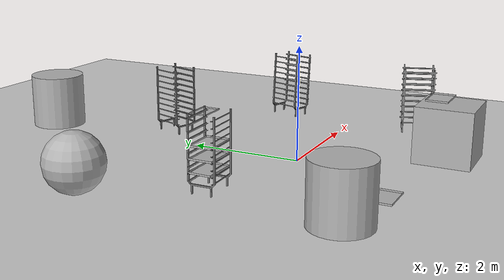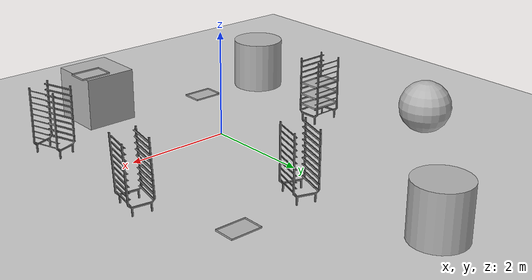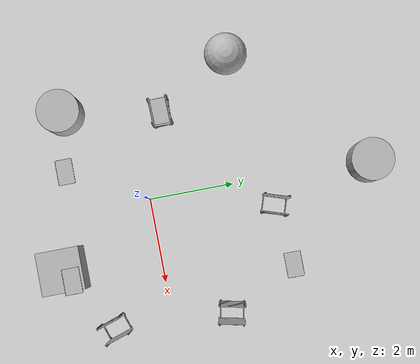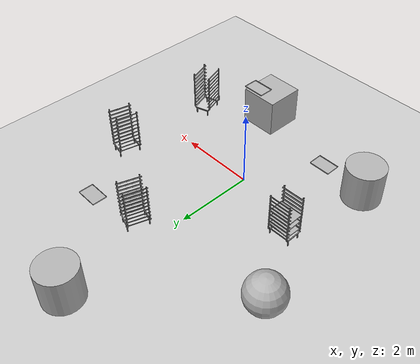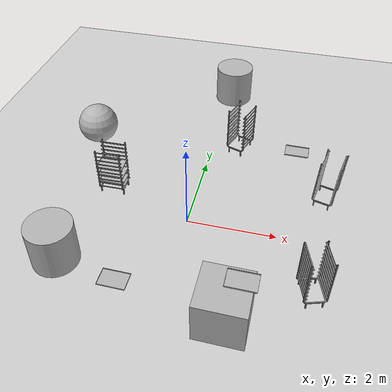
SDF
<?xml version="1.0" ?>

<sdf version='1.9'>
  <world name='learning'>
    <physics name='1ms' type='ignored'>
      <max_step_size>0.0050000000000000001</max_step_size>
      <real_time_factor>1</real_time_factor>
      <real_time_update_rate>1000</real_time_update_rate>
    </physics>
    <plugin name='gz::sim::systems::Physics' filename='ignition-gazebo-physics-system'/>
    <plugin name='gz::sim::systems::UserCommands' filename='ignition-gazebo-user-commands-system'/>
    <plugin name='gz::sim::systems::SceneBroadcaster' filename='ignition-gazebo-scene-broadcaster-system'/>
    <plugin name='gz::sim::systems::Contact' filename='ignition-gazebo-contact-system'/>
    <plugin name='gz::sim::systems::Sensors' filename='gz-sim-sensors-system'>
      <render_engine>ogre2</render_engine>
    </plugin>
    <gravity>0 0 -9.81</gravity>
    <magnetic_field>6e-06 2.3e-05 -4.2e-05</magnetic_field>
    <atmosphere type='adiabatic'/>
    <scene>
      <ambient>0.4 0.4 0.4 1</ambient>
      <background>0.7 0.7 0.7 1</background>
      <shadows>true</shadows>
    </scene>
    <model name='ground_plane'>
      <plugin name='gz::sim::systems::JointStatePublisher' filename='gz-sim-joint-state-publisher-system'>
        <topic>joint_states</topic>
      </plugin>
      <static>true</static>
      <link name='link'>
        <collision name='collision'>
          <geometry>
            <plane>
              <normal>0 0 1</normal>
              <size>100 100</size>
            </plane>
          </geometry>
          <surface>
            <friction>
              <ode/>
            </friction>
            <bounce/>
            <contact/>
          </surface>
        </collision>
        <visual name='visual'>
          <geometry>
            <plane>
              <normal>0 0 1</normal>
              <size>100 100</size>
            </plane>
          </geometry>
          <material>
            <ambient>0.8 0.8 0.8 1</ambient>
            <diffuse>0.8 0.8 0.8 1</diffuse>
            <specular>0.8 0.8 0.8 1</specular>
          </material>
        </visual>
        <pose>0 0 0 0 -0 0</pose>
        <inertial>
          <pose>0 0 0 0 -0 0</pose>
          <mass>1</mass>
          <inertia>
            <ixx>1</ixx>
            <ixy>0</ixy>
            <ixz>0</ixz>
            <iyy>1</iyy>
            <iyz>0</iyz>
            <izz>1</izz>
          </inertia>
        </inertial>
        <enable_wind>false</enable_wind>
      </link>
      <pose>0 0 0 0 -0 0</pose>
      <self_collide>false</self_collide>
    </model>
    <model name='Vassoio_0'>
      <pose>-2.24159 0.459104 0.321541 0.000178 -0.001519 -0.029585</pose>
      <static>true</static>
      <self_collide>false</self_collide>
      <link name='link'>
        <pose>0 0 0 0 -0 0</pose>
        <inertial>
          <pose>0.3 0.2 0.0032 0 -0 0</pose>
          <mass>1.522</mass>
          <inertia>
            <ixx>0.0079399999999999991</ixx>
            <ixy>0</ixy>
            <ixz>0</ixz>
            <iyy>0.01404</iyy>
            <iyz>0</iyz>
            <izz>0.02198</izz>
          </inertia>
        </inertial>
        <visual name='visual'>
          <label>5</label>
          <geometry>
            <mesh>
              <uri>file:///home/nicola/ros2_ws/meshes/Vassoio.dae</uri>
            </mesh>
          </geometry>
          <material>
            <ambient>0.7 0.7 0.7 1</ambient>
            <diffuse>0.7 0.7 0.7 1</diffuse>
            <specular>0.9 0.9 0.9 1</specular>
          </material>
        </visual>
        <collision name='collision'>
          <geometry>
            <mesh>
              <uri>file:///home/nicola/ros2_ws/meshes/Vassoio.dae</uri>
            </mesh>
          </geometry>
          <surface>
            <friction>
              <torsional>
                <coefficient>0.001</coefficient>
                <use_patch_radius>true</use_patch_radius>
                <patch_radius>0.050000000000000003</patch_radius>
              </torsional>
            </friction>
            <bounce>
              <restitution_coefficient>0.20000000000000001</restitution_coefficient>
              <threshold>100000</threshold>
            </bounce>
          </surface>
        </collision>
        <enable_wind>false</enable_wind>
      </link>
    </model>
    <model name='Carrello'>
      <pose>-1.643663 0.405748 0.13993 0 -0.000178 1.59644</pose>
      <static>true</static>
      <self_collide>false</self_collide>
      <link name='link'>
        <pose>0 0 0 0 -0 0</pose>
        <inertial>
          <pose>0.2375 0.2869 0.499 0 -0 0</pose>
          <mass>24.928000000000001</mass>
          <inertia>
            <ixx>0.066227999999999995</ixx>
            <ixy>0</ixy>
            <ixz>0.013979</ixz>
            <iyy>0.074418999999999999</iyy>
            <iyz>0</iyz>
            <izz>0.0082780000000000006</izz>
          </inertia>
        </inertial>
        <visual name='visual'>
          <label>4</label>
          <geometry>
            <mesh>
              <uri>file:///home/nicola/ros2_ws/meshes/Carrello.dae</uri>
            </mesh>
          </geometry>
          <material>
            <ambient>0.5 0.5 0.5 1</ambient>
            <diffuse>0.5 0.5 0.5 1</diffuse>
            <specular>0.3 0.3 0.3 1</specular>
          </material>
        </visual>
        <collision name='collision'>
          <geometry>
            <mesh>
              <uri>file:///home/nicola/ros2_ws/meshes/Carrello.dae</uri>
            </mesh>
          </geometry>
          <surface>
            <friction>
              <torsional>
                <coefficient>0.001</coefficient>
                <use_patch_radius>true</use_patch_radius>
                <patch_radius>0.050000000000000003</patch_radius>
              </torsional>
            </friction>
            <bounce>
              <restitution_coefficient>0.0050000000000000001</restitution_coefficient>
              <threshold>100000</threshold>
            </bounce>
          </surface>
        </collision>
        <enable_wind>false</enable_wind>
      </link>
    </model>
    <model name='Vassoio_1'>
      <pose>-1.631256 0.84879 0.531328 -0.001124 -0.016129 -3.12717</pose>
      <static>true</static>
      <self_collide>false</self_collide>
      <link name='link'>
        <pose>0 0 0 0 -0 0</pose>
        <inertial>
          <pose>0.3 0.2 0.0032 0 -0 0</pose>
          <mass>1.522</mass>
          <inertia>
            <ixx>0.0079399999999999991</ixx>
            <ixy>0</ixy>
            <ixz>0</ixz>
            <iyy>0.01404</iyy>
            <iyz>0</iyz>
            <izz>0.02198</izz>
          </inertia>
        </inertial>
        <visual name='visual'>
          <label>5</label>
          <geometry>
            <mesh>
              <uri>file:///home/nicola/ros2_ws/meshes/Vassoio.dae</uri>
            </mesh>
          </geometry>
          <material>
            <ambient>0.7 0.7 0.7 1</ambient>
            <diffuse>0.7 0.7 0.7 1</diffuse>
            <specular>0.9 0.9 0.9 1</specular>
          </material>
        </visual>
        <collision name='collision'>
          <geometry>
            <mesh>
              <uri>file:///home/nicola/ros2_ws/meshes/Vassoio.dae</uri>
            </mesh>
          </geometry>
          <surface>
            <friction>
              <torsional>
                <coefficient>0.001</coefficient>
                <use_patch_radius>true</use_patch_radius>
                <patch_radius>0.050000000000000003</patch_radius>
              </torsional>
            </friction>
            <bounce>
              <restitution_coefficient>0.20000000000000001</restitution_coefficient>
              <threshold>100000</threshold>
            </bounce>
          </surface>
        </collision>
        <enable_wind>false</enable_wind>
      </link>
    </model>
    <model name='Vassoio_2'>
      <pose>-1.64906 0.844732 0.75101 -0.000532 -0.00512 -3.11521</pose>
      <static>true</static>
      <self_collide>false</self_collide>
      <link name='link'>
        <pose>0 0 0 0 -0 0</pose>
        <inertial>
          <pose>0.3 0.2 0.0032 0 -0 0</pose>
          <mass>1.522</mass>
          <inertia>
            <ixx>0.0079399999999999991</ixx>
            <ixy>0</ixy>
            <ixz>0</ixz>
            <iyy>0.01404</iyy>
            <iyz>0</iyz>
            <izz>0.02198</izz>
          </inertia>
        </inertial>
        <visual name='visual'>
          <label>5</label>
          <geometry>
            <mesh>
              <uri>file:///home/nicola/ros2_ws/meshes/Vassoio.dae</uri>
            </mesh>
          </geometry>
          <material>
            <ambient>0.7 0.7 0.7 1</ambient>
            <diffuse>0.7 0.7 0.7 1</diffuse>
            <specular>0.9 0.9 0.9 1</specular>
          </material>
        </visual>
        <collision name='collision'>
          <geometry>
            <mesh>
              <uri>file:///home/nicola/ros2_ws/meshes/Vassoio.dae</uri>
            </mesh>
          </geometry>
          <surface>
            <friction>
              <torsional>
                <coefficient>0.001</coefficient>
                <use_patch_radius>true</use_patch_radius>
                <patch_radius>0.050000000000000003</patch_radius>
              </torsional>
            </friction>
            <bounce>
              <restitution_coefficient>0.20000000000000001</restitution_coefficient>
              <threshold>100000</threshold>
            </bounce>
          </surface>
        </collision>
        <enable_wind>false</enable_wind>
      </link>
    </model>
    <model name='Vassoio_3'>
      <pose>-1.3225 -2.08201 -1e-06 0 -0 0</pose>
      <static>false</static>
      <self_collide>false</self_collide>
      <link name='link'>
        <pose>0 0 0 0 -0 0</pose>
        <inertial>
          <pose>0.3 0.2 0.0032 0 -0 0</pose>
          <mass>1.522</mass>
          <inertia>
            <ixx>0.0079399999999999991</ixx>
            <ixy>0</ixy>
            <ixz>0</ixz>
            <iyy>0.01404</iyy>
            <iyz>0</iyz>
            <izz>0.02198</izz>
          </inertia>
        </inertial>
        <visual name='visual'>
          <label>5</label>
          <geometry>
            <mesh>
              <uri>file:///home/nicola/ros2_ws/meshes/Vassoio.dae</uri>
            </mesh>
          </geometry>
          <material>
            <ambient>0.7 0.7 0.7 1</ambient>
            <diffuse>0.7 0.7 0.7 1</diffuse>
            <specular>0.9 0.9 0.9 1</specular>
          </material>
        </visual>
        <collision name='collision'>
          <geometry>
            <mesh>
              <uri>file:///home/nicola/ros2_ws/meshes/Vassoio.dae</uri>
            </mesh>
          </geometry>
          <surface>
            <friction>
              <ode>
                <mu>0.29999999999999999</mu>
                <mu2>0.29999999999999999</mu2>
              </ode>
              <torsional>
                <coefficient>0.001</coefficient>
                <use_patch_radius>true</use_patch_radius>
                <patch_radius>0.050000000000000003</patch_radius>
              </torsional>
            </friction>
            <bounce>
              <restitution_coefficient>0.20000000000000001</restitution_coefficient>
              <threshold>100000</threshold>
            </bounce>
            <contact>
              <ode>
                <kp>10000000</kp>
                <kd>1</kd>
                <max_vel>0.01</max_vel>
                <min_depth>0.001</min_depth>
              </ode>
            </contact>
          </surface>
        </collision>
        <enable_wind>false</enable_wind>
      </link>
    </model>
    <model name='sphere'>
      <pose>-3.0189 2.38552 0.5 0 -0 0</pose>
      <link name='sphere_link'>
        <inertial>
          <inertia>
            <ixx>0.10000000000000001</ixx>
            <ixy>0</ixy>
            <ixz>0</ixz>
            <iyy>0.10000000000000001</iyy>
            <iyz>0</iyz>
            <izz>0.10000000000000001</izz>
          </inertia>
          <mass>1</mass>
          <pose>0 0 0 0 -0 0</pose>
        </inertial>
        <collision name='sphere_collision'>
          <geometry>
            <sphere>
              <radius>0.5</radius>
            </sphere>
          </geometry>
          <surface>
            <friction>
              <ode/>
            </friction>
            <bounce/>
            <contact/>
          </surface>
        </collision>
        <visual name='sphere_visual'>
          <geometry>
            <sphere>
              <radius>0.5</radius>
            </sphere>
          </geometry>
          <material>
            <ambient>0.3 0.3 0.3 1</ambient>
            <diffuse>0.7 0.7 0.7 1</diffuse>
            <specular>1 1 1 1</specular>
          </material>
        </visual>
        <pose>0 0 0 0 -0 0</pose>
        <enable_wind>false</enable_wind>
      </link>
      <static>true</static>
      <self_collide>false</self_collide>
    </model>
    <model name='cylinder'>
      <pose>-2.36271 -1.66782 0.499996 0 0 0</pose>
      <link name='cylinder_link'>
        <inertial>
          <inertia>
            <ixx>0.14580000000000001</ixx>
            <ixy>0</ixy>
            <ixz>0</ixz>
            <iyy>0.14580000000000001</iyy>
            <iyz>0</iyz>
            <izz>0.125</izz>
          </inertia>
          <mass>1</mass>
          <pose>0 0 0 0 -0 0</pose>
        </inertial>
        <collision name='cylinder_collision'>
          <geometry>
            <cylinder>
              <radius>0.5</radius>
              <length>1</length>
            </cylinder>
          </geometry>
          <surface>
            <friction>
              <ode/>
            </friction>
            <bounce/>
            <contact/>
          </surface>
        </collision>
        <visual name='cylinder_visual'>
          <geometry>
            <cylinder>
              <radius>0.5</radius>
              <length>1</length>
            </cylinder>
          </geometry>
          <material>
            <ambient>0.3 0.3 0.3 1</ambient>
            <diffuse>0.7 0.7 0.7 1</diffuse>
            <specular>1 1 1 1</specular>
          </material>
        </visual>
        <pose>0 0 0 0 -0 0</pose>
        <enable_wind>false</enable_wind>
      </link>
      <static>true</static>
      <self_collide>false</self_collide>
    </model>
    <model name='box'>
      <pose>1.27199 -2.27165 0.499823 9.4e-05 -0.000151 0.002153</pose>
      <link name='box_link'>
        <inertial>
          <inertia>
            <ixx>0.16666</ixx>
            <ixy>0</ixy>
            <ixz>0</ixz>
            <iyy>0.16666</iyy>
            <iyz>0</iyz>
            <izz>0.16666</izz>
          </inertia>
          <mass>1</mass>
          <pose>0 0 0 0 -0 0</pose>
        </inertial>
        <collision name='box_collision'>
          <geometry>
            <box>
              <size>1 1 1</size>
            </box>
          </geometry>
          <surface>
            <friction>
              <ode/>
            </friction>
            <bounce/>
            <contact/>
          </surface>
        </collision>
        <visual name='box_visual'>
          <geometry>
            <box>
              <size>1 1 1</size>
            </box>
          </geometry>
          <material>
            <ambient>0.3 0.3 0.3 1</ambient>
            <diffuse>0.7 0.7 0.7 1</diffuse>
            <specular>1 1 1 1</specular>
          </material>
        </visual>
        <pose>0 0 0 0 -0 0</pose>
        <enable_wind>false</enable_wind>
      </link>
      <static>true</static>
      <self_collide>false</self_collide>
    </model>
    <model name='Carrello_1'>
      <pose>1.00034 3.05295 0.139799 -1.5e-05 -5.7e-05 2.82324</pose>
      <static>false</static>
      <self_collide>false</self_collide>
      <link name='link'>
        <pose>0 0 0 0 0 0</pose>
        <inertial>
          <pose>0.2375 0.2869 0.499 0 0 0</pose>
          <mass>24.928000000000001</mass>
          <inertia>
            <ixx>0.066227999999999995</ixx>
            <ixy>0</ixy>
            <ixz>0.013979</ixz>
            <iyy>0.074418999999999999</iyy>
            <iyz>0</iyz>
            <izz>0.0082780000000000006</izz>
          </inertia>
        </inertial>
        <visual name='visual'>
          <label>4</label>
          <geometry>
            <mesh>
              <uri>file:///home/nicola/ros2_ws/meshes/Carrello.dae</uri>
            </mesh>
          </geometry>
          <material>
            <ambient>0.5 0.5 0.5 1</ambient>
            <diffuse>0.5 0.5 0.5 1</diffuse>
            <specular>0.3 0.3 0.3 1</specular>
          </material>
        </visual>
        <collision name='collision'>
          <geometry>
            <mesh>
              <uri>file:///home/nicola/ros2_ws/meshes/Carrello.dae</uri>
            </mesh>
          </geometry>
          <surface>
            <friction>
              <torsional>
                <coefficient>0.001</coefficient>
                <use_patch_radius>true</use_patch_radius>
                <patch_radius>0.050000000000000003</patch_radius>
              </torsional>
            </friction>
            <bounce>
              <restitution_coefficient>0.0050000000000000001</restitution_coefficient>
              <threshold>100000</threshold>
            </bounce>
          </surface>
        </collision>
        <enable_wind>false</enable_wind>
      </link>
    </model>
    <model name='cylinder_0'>
      <pose>0.074198 5.24233 0.499983 0 -0 0</pose>
      <link name='cylinder_link'>
        <inertial>
          <inertia>
            <ixx>0.14580000000000001</ixx>
            <ixy>0</ixy>
            <ixz>0</ixz>
            <iyy>0.14580000000000001</iyy>
            <iyz>0</iyz>
            <izz>0.125</izz>
          </inertia>
          <mass>1</mass>
          <pose>0 0 0 0 -0 0</pose>
        </inertial>
        <collision name='cylinder_collision'>
          <geometry>
            <cylinder>
              <radius>0.5</radius>
              <length>1</length>
            </cylinder>
          </geometry>
          <surface>
            <friction>
              <ode/>
            </friction>
            <bounce/>
            <contact/>
          </surface>
        </collision>
        <visual name='cylinder_visual'>
          <geometry>
            <cylinder>
              <radius>0.5</radius>
              <length>1</length>
            </cylinder>
          </geometry>
          <material>
            <ambient>0.3 0.3 0.3 1</ambient>
            <diffuse>0.7 0.7 0.7 1</diffuse>
            <specular>1 1 1 1</specular>
          </material>
        </visual>
        <pose>0 0 0 0 -0 0</pose>
        <enable_wind>false</enable_wind>
      </link>
      <static>true</static>
      <self_collide>false</self_collide>
    </model>
    <model name='Carrello_2'>
      <pose>2.94965 -0.962008 0.139669 -1.5e-05 -0.000598 -2.82538</pose>
      <static>false</static>
      <self_collide>false</self_collide>
      <link name='link'>
        <pose>0 0 0 0 0 0</pose>
        <inertial>
          <pose>0.2375 0.2869 0.499 0 0 0</pose>
          <mass>24.928000000000001</mass>
          <inertia>
            <ixx>0.066227999999999995</ixx>
            <ixy>0</ixy>
            <ixz>0.013979</ixz>
            <iyy>0.074418999999999999</iyy>
            <iyz>0</iyz>
            <izz>0.0082780000000000006</izz>
          </inertia>
        </inertial>
        <visual name='visual'>
          <label>4</label>
          <geometry>
            <mesh>
              <uri>file:///home/nicola/ros2_ws/meshes/Carrello.dae</uri>
            </mesh>
          </geometry>
          <material>
            <ambient>0.5 0.5 0.5 1</ambient>
            <diffuse>0.5 0.5 0.5 1</diffuse>
            <specular>0.3 0.3 0.3 1</specular>
          </material>
        </visual>
        <collision name='collision'>
          <geometry>
            <mesh>
              <uri>file:///home/nicola/ros2_ws/meshes/Carrello.dae</uri>
            </mesh>
          </geometry>
          <surface>
            <friction>
              <torsional>
                <coefficient>0.001</coefficient>
                <use_patch_radius>true</use_patch_radius>
                <patch_radius>0.050000000000000003</patch_radius>
              </torsional>
            </friction>
            <bounce>
              <restitution_coefficient>0.0050000000000000001</restitution_coefficient>
              <threshold>100000</threshold>
            </bounce>
          </surface>
        </collision>
        <enable_wind>false</enable_wind>
      </link>
    </model>
    <model name='Carrello_3'>
      <pose>2.63118 1.19835 0.143243 0.017153 0.04141 -0.214463</pose>
      <static>true</static>
      <self_collide>false</self_collide>
      <link name='link'>
        <pose>0 0 0 0 0 0</pose>
        <inertial>
          <pose>0.2375 0.2869 0.499 0 0 0</pose>
          <mass>24.928000000000001</mass>
          <inertia>
            <ixx>0.066227999999999995</ixx>
            <ixy>0</ixy>
            <ixz>0.013979</ixz>
            <iyy>0.074418999999999999</iyy>
            <iyz>0</iyz>
            <izz>0.0082780000000000006</izz>
          </inertia>
        </inertial>
        <visual name='visual'>
          <label>4</label>
          <geometry>
            <mesh>
              <uri>file:///home/nicola/ros2_ws/meshes/Carrello.dae</uri>
            </mesh>
          </geometry>
          <material>
            <ambient>0.5 0.5 0.5 1</ambient>
            <diffuse>0.5 0.5 0.5 1</diffuse>
            <specular>0.3 0.3 0.3 1</specular>
          </material>
        </visual>
        <collision name='collision'>
          <geometry>
            <mesh>
              <uri>file:///home/nicola/ros2_ws/meshes/Carrello.dae</uri>
            </mesh>
          </geometry>
          <surface>
            <friction>
              <torsional>
                <coefficient>0.001</coefficient>
                <use_patch_radius>true</use_patch_radius>
                <patch_radius>0.050000000000000003</patch_radius>
              </torsional>
            </friction>
            <bounce>
              <restitution_coefficient>0.0050000000000000001</restitution_coefficient>
              <threshold>100000</threshold>
            </bounce>
          </surface>
        </collision>
        <enable_wind>false</enable_wind>
      </link>
    </model>
    <model name='Vassoio_3_1'>
      <pose>1.24167 -2.23696 0.998963 8.2e-05 -0.000139 0.001115</pose>
      <static>true</static>
      <self_collide>false</self_collide>
      <link name='link'>
        <pose>0 0 0 0 0 0</pose>
        <inertial>
          <pose>0.3 0.2 0.0032 0 0 0</pose>
          <mass>1.522</mass>
          <inertia>
            <ixx>0.0079399999999999991</ixx>
            <ixy>0</ixy>
            <ixz>0</ixz>
            <iyy>0.01404</iyy>
            <iyz>0</iyz>
            <izz>0.02198</izz>
          </inertia>
        </inertial>
        <visual name='visual'>
          <label>5</label>
          <geometry>
            <mesh>
              <uri>file:///home/nicola/ros2_ws/meshes/Vassoio.dae</uri>
            </mesh>
          </geometry>
          <material>
            <ambient>0.7 0.7 0.7 1</ambient>
            <diffuse>0.7 0.7 0.7 1</diffuse>
            <specular>0.9 0.9 0.9 1</specular>
          </material>
        </visual>
        <collision name='collision'>
          <geometry>
            <mesh>
              <uri>file:///home/nicola/ros2_ws/meshes/Vassoio.dae</uri>
            </mesh>
          </geometry>
          <surface>
            <friction>
              <ode>
                <mu>0.29999999999999999</mu>
                <mu2>0.29999999999999999</mu2>
              </ode>
              <torsional>
                <coefficient>0.001</coefficient>
                <use_patch_radius>true</use_patch_radius>
                <patch_radius>0.050000000000000003</patch_radius>
              </torsional>
            </friction>
            <bounce>
              <restitution_coefficient>0.20000000000000001</restitution_coefficient>
              <threshold>100000</threshold>
            </bounce>
            <contact>
              <ode>
                <kp>10000000</kp>
                <kd>1</kd>
                <max_vel>0.01</max_vel>
                <min_depth>0.001</min_depth>
              </ode>
            </contact>
          </surface>
        </collision>
        <enable_wind>false</enable_wind>
      </link>
    </model>
    <model name='Vassoio_3_2'>
      <pose>1.85411 2.8733 -1e-06 0 -0 0</pose>
      <static>true</static>
      <self_collide>false</self_collide>
      <link name='link'>
        <pose>0 0 0 0 0 0</pose>
        <inertial>
          <pose>0.3 0.2 0.0032 0 0 0</pose>
          <mass>1.522</mass>
          <inertia>
            <ixx>0.0079399999999999991</ixx>
            <ixy>0</ixy>
            <ixz>0</ixz>
            <iyy>0.01404</iyy>
            <iyz>0</iyz>
            <izz>0.02198</izz>
          </inertia>
        </inertial>
        <visual name='visual'>
          <label>5</label>
          <geometry>
            <mesh>
              <uri>file:///home/nicola/ros2_ws/meshes/Vassoio.dae</uri>
            </mesh>
          </geometry>
          <material>
            <ambient>0.7 0.7 0.7 1</ambient>
            <diffuse>0.7 0.7 0.7 1</diffuse>
            <specular>0.9 0.9 0.9 1</specular>
          </material>
        </visual>
        <collision name='collision'>
          <geometry>
            <mesh>
              <uri>file:///home/nicola/ros2_ws/meshes/Vassoio.dae</uri>
            </mesh>
          </geometry>
          <surface>
            <friction>
              <ode>
                <mu>0.29999999999999999</mu>
                <mu2>0.29999999999999999</mu2>
              </ode>
              <torsional>
                <coefficient>0.001</coefficient>
                <use_patch_radius>true</use_patch_radius>
                <patch_radius>0.050000000000000003</patch_radius>
              </torsional>
            </friction>
            <bounce>
              <restitution_coefficient>0.20000000000000001</restitution_coefficient>
              <threshold>100000</threshold>
            </bounce>
            <contact>
              <ode>
                <kp>10000000</kp>
                <kd>1</kd>
                <max_vel>0.01</max_vel>
                <min_depth>0.001</min_depth>
              </ode>
            </contact>
          </surface>
        </collision>
        <enable_wind>false</enable_wind>
      </link>
    </model>
    <light name='sun' type='directional'>
      <pose>0 0 10 0 -0 0</pose>
      <cast_shadows>true</cast_shadows>
      <intensity>1</intensity>
      <direction>-0.5 0.1 -0.9</direction>
      <diffuse>0.8 0.8 0.8 1</diffuse>
      <specular>0.2 0.2 0.2 1</specular>
      <attenuation>
        <range>1000</range>
        <linear>0.01</linear>
        <constant>0.90000000000000002</constant>
        <quadratic>0.001</quadratic>
      </attenuation>
      <spot>
        <inner_angle>0</inner_angle>
        <outer_angle>0</outer_angle>
        <falloff>0</falloff>
      </spot>
    </light>
  </world>
</sdf>
